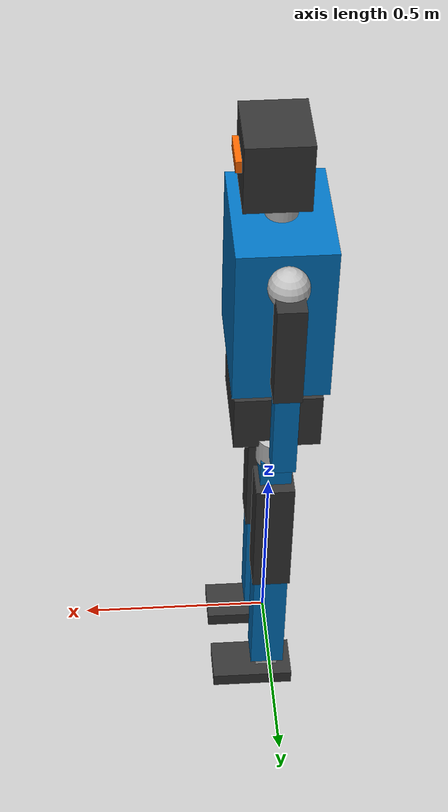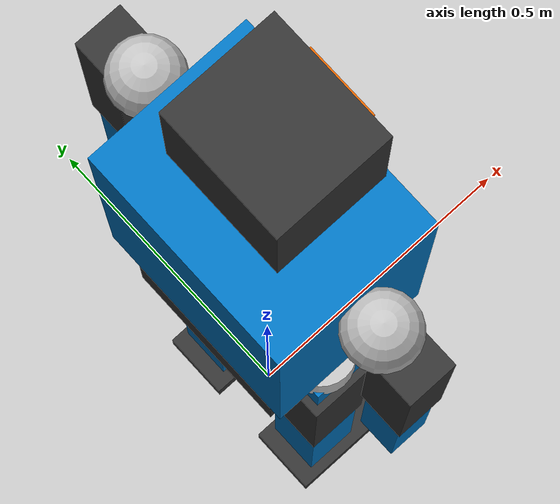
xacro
<?xml version="1.0"?>
<robot name="synapse_humanoid" xmlns:xacro="http://www.ros.org/wiki/xacro">

  <!-- Include ros2_control definition -->
  <xacro:include filename="$(find humanoid_description)/urdf/humanoid_ros2_control.xacro"/>

  <!-- Material definitions -->
  <material name="dark_grey"><color rgba="0.2 0.2 0.2 1.0"/></material>
  <material name="metallic_blue"><color rgba="0.0 0.45 0.75 1.0"/></material>
  <material name="silver"><color rgba="0.75 0.75 0.75 1.0"/></material>
  <material name="orange"><color rgba="1.0 0.4 0.0 1.0"/></material>

  <!-- Base footprint & Pelvis -->
  <link name="base_footprint"/>

  <joint name="base_footprint_to_pelvis" type="fixed">
    <parent link="base_footprint"/>
    <child link="pelvis"/>
    <origin xyz="0 0 0.85" rpy="0 0 0"/>
  </joint>

  <link name="pelvis">
    <visual>
      <geometry><box size="0.22 0.26 0.16"/></geometry>
      <material name="dark_grey"/>
    </visual>
    <collision>
      <geometry><box size="0.22 0.26 0.16"/></geometry>
    </collision>
    <inertial>
      <mass value="5.0"/>
      <origin xyz="0 0 0"/>
      <inertia ixx="0.03" ixy="0" ixz="0" iyy="0.03" iyz="0" izz="0.03"/>
    </inertial>
  </link>

  <!-- Torso -->
  <joint name="torso_yaw_joint" type="revolute">
    <parent link="pelvis"/>
    <child link="torso"/>
    <origin xyz="0 0 0.12" rpy="0 0 0"/>
    <axis xyz="0 0 1"/>
    <limit lower="-1.57" upper="1.57" effort="100.0" velocity="3.0"/>
  </joint>

  <link name="torso">
    <visual>
      <origin xyz="0 0 0.22" rpy="0 0 0"/>
      <geometry><box size="0.24 0.32 0.44"/></geometry>
      <material name="metallic_blue"/>
    </visual>
    <collision>
      <origin xyz="0 0 0.22" rpy="0 0 0"/>
      <geometry><box size="0.24 0.32 0.44"/></geometry>
    </collision>
    <inertial>
      <mass value="12.0"/>
      <origin xyz="0 0 0.22"/>
      <inertia ixx="0.20" ixy="0" ixz="0" iyy="0.18" iyz="0" izz="0.15"/>
    </inertial>
  </link>

  <!-- Head & Camera -->
  <joint name="head_yaw_joint" type="revolute">
    <parent link="torso"/>
    <child link="neck_link"/>
    <origin xyz="0 0 0.46" rpy="0 0 0"/>
    <axis xyz="0 0 1"/>
    <limit lower="-1.2" upper="1.2" effort="20.0" velocity="4.0"/>
  </joint>

  <link name="neck_link">
    <visual>
      <geometry><cylinder radius="0.04" length="0.08"/></geometry>
      <material name="silver"/>
    </visual>
    <inertial><mass value="0.5"/><inertia ixx="0.001" ixy="0" ixz="0" iyy="0.001" iyz="0" izz="0.001"/></inertial>
  </link>

  <joint name="head_pitch_joint" type="revolute">
    <parent link="neck_link"/>
    <child link="head"/>
    <origin xyz="0 0 0.06" rpy="0 0 0"/>
    <axis xyz="0 1 0"/>
    <limit lower="-0.8" upper="0.8" effort="20.0" velocity="4.0"/>
  </joint>

  <link name="head">
    <visual>
      <origin xyz="0.02 0 0.08"/>
      <geometry><box size="0.16 0.18 0.18"/></geometry>
      <material name="dark_grey"/>
    </visual>
    <collision>
      <origin xyz="0.02 0 0.08"/>
      <geometry><box size="0.16 0.18 0.18"/></geometry>
    </collision>
    <inertial><mass value="1.8"/><origin xyz="0 0 0.08"/><inertia ixx="0.01" ixy="0" ixz="0" iyy="0.01" iyz="0" izz="0.01"/></inertial>
  </link>

  <!-- RGB-D Head Camera Link -->
  <joint name="head_camera_joint" type="fixed">
    <parent link="head"/>
    <child link="head_camera_link"/>
    <origin xyz="0.10 0 0.09" rpy="0 0 0"/>
  </joint>
  <link name="head_camera_link">
    <visual>
      <geometry><box size="0.03 0.10 0.03"/></geometry>
      <material name="orange"/>
    </visual>
  </link>

  <!-- 6-DOF Leg Macro -->
  <xacro:macro name="bipedal_leg" params="prefix reflect">
    <joint name="${prefix}_hip_yaw_joint" type="revolute">
      <parent link="pelvis"/>
      <child link="${prefix}_hip_yaw_link"/>
      <origin xyz="0 ${reflect * 0.11} -0.10" rpy="0 0 0"/>
      <axis xyz="0 0 1"/>
      <limit lower="-0.8" upper="0.8" effort="120" velocity="4.0"/>
    </joint>

    <link name="${prefix}_hip_yaw_link">
      <visual><geometry><cylinder radius="0.05" length="0.08"/></geometry><material name="silver"/></visual>
      <inertial><mass value="1.5"/><inertia ixx="0.005" ixy="0" ixz="0" iyy="0.005" iyz="0" izz="0.005"/></inertial>
    </link>

    <joint name="${prefix}_hip_roll_joint" type="revolute">
      <parent link="${prefix}_hip_yaw_link"/>
      <child link="${prefix}_hip_roll_link"/>
      <origin xyz="0 0 -0.06" rpy="0 0 0"/>
      <axis xyz="1 0 0"/>
      <limit lower="-0.5" upper="0.5" effort="150" velocity="4.0"/>
    </joint>

    <link name="${prefix}_hip_roll_link">
      <visual><geometry><box size="0.08 0.08 0.08"/></geometry><material name="metallic_blue"/></visual>
      <inertial><mass value="1.8"/><inertia ixx="0.006" ixy="0" ixz="0" iyy="0.006" iyz="0" izz="0.006"/></inertial>
    </link>

    <joint name="${prefix}_hip_pitch_joint" type="revolute">
      <parent link="${prefix}_hip_roll_link"/>
      <child link="${prefix}_thigh"/>
      <origin xyz="0 0 -0.06" rpy="0 0 0"/>
      <axis xyz="0 1 0"/>
      <limit lower="-1.6" upper="0.8" effort="200" velocity="4.0"/>
    </joint>

    <link name="${prefix}_thigh">
      <visual>
        <origin xyz="0 0 -0.18"/>
        <geometry><box size="0.10 0.10 0.36"/></geometry>
        <material name="dark_grey"/>
      </visual>
      <collision>
        <origin xyz="0 0 -0.18"/>
        <geometry><box size="0.10 0.10 0.36"/></geometry>
      </collision>
      <inertial><mass value="4.0"/><origin xyz="0 0 -0.18"/><inertia ixx="0.04" ixy="0" ixz="0" iyy="0.04" iyz="0" izz="0.01"/></inertial>
    </link>

    <joint name="${prefix}_knee_pitch_joint" type="revolute">
      <parent link="${prefix}_thigh"/>
      <child link="${prefix}_shin"/>
      <origin xyz="0 0 -0.36" rpy="0 0 0"/>
      <axis xyz="0 1 0"/>
      <limit lower="0.0" upper="2.2" effort="220" velocity="4.0"/>
    </joint>

    <link name="${prefix}_shin">
      <visual>
        <origin xyz="0 0 -0.17"/>
        <geometry><box size="0.09 0.09 0.34"/></geometry>
        <material name="metallic_blue"/>
      </visual>
      <collision>
        <origin xyz="0 0 -0.17"/>
        <geometry><box size="0.09 0.09 0.34"/></geometry>
      </collision>
      <inertial><mass value="3.5"/><origin xyz="0 0 -0.17"/><inertia ixx="0.03" ixy="0" ixz="0" iyy="0.03" iyz="0" izz="0.01"/></inertial>
    </link>

    <joint name="${prefix}_ankle_pitch_joint" type="revolute">
      <parent link="${prefix}_shin"/>
      <child link="${prefix}_ankle_link"/>
      <origin xyz="0 0 -0.34" rpy="0 0 0"/>
      <axis xyz="0 1 0"/>
      <limit lower="-0.8" upper="0.8" effort="120" velocity="4.0"/>
    </joint>

    <link name="${prefix}_ankle_link">
      <visual><geometry><box size="0.06 0.06 0.06"/></geometry><material name="silver"/></visual>
      <inertial><mass value="0.8"/><inertia ixx="0.002" ixy="0" ixz="0" iyy="0.002" iyz="0" izz="0.002"/></inertial>
    </link>

    <joint name="${prefix}_ankle_roll_joint" type="revolute">
      <parent link="${prefix}_ankle_link"/>
      <child link="${prefix}_foot"/>
      <origin xyz="0 0 -0.04" rpy="0 0 0"/>
      <axis xyz="1 0 0"/>
      <limit lower="-0.4" upper="0.4" effort="120" velocity="4.0"/>
    </joint>

    <link name="${prefix}_foot">
      <visual>
        <origin xyz="0.04 0 -0.02"/>
        <geometry><box size="0.22 0.12 0.04"/></geometry>
        <material name="dark_grey"/>
      </visual>
      <collision>
        <origin xyz="0.04 0 -0.02"/>
        <geometry><box size="0.22 0.12 0.04"/></geometry>
      </collision>
      <inertial><mass value="1.2"/><origin xyz="0.04 0 -0.02"/><inertia ixx="0.004" ixy="0" ixz="0" iyy="0.008" iyz="0" izz="0.009"/></inertial>
    </link>
  </xacro:macro>

  <xacro:bipedal_leg prefix="left" reflect="1"/>
  <xacro:bipedal_leg prefix="right" reflect="-1"/>

  <!-- 3-DOF Arm Macro -->
  <xacro:macro name="upper_arm" params="prefix reflect">
    <joint name="${prefix}_shoulder_pitch_joint" type="revolute">
      <parent link="torso"/>
      <child link="${prefix}_shoulder_link"/>
      <origin xyz="0 ${reflect * 0.20} 0.38" rpy="0 0 0"/>
      <axis xyz="0 1 0"/>
      <limit lower="-2.0" upper="2.0" effort="60" velocity="4.0"/>
    </joint>

    <link name="${prefix}_shoulder_link">
      <visual><geometry><sphere radius="0.05"/></geometry><material name="silver"/></visual>
      <inertial><mass value="1.0"/><inertia ixx="0.002" ixy="0" ixz="0" iyy="0.002" iyz="0" izz="0.002"/></inertial>
    </link>

    <joint name="${prefix}_shoulder_roll_joint" type="revolute">
      <parent link="${prefix}_shoulder_link"/>
      <child link="${prefix}_upper_arm"/>
      <origin xyz="0 ${reflect * 0.05} 0" rpy="0 0 0"/>
      <axis xyz="1 0 0"/>
      <limit lower="-1.8" upper="1.8" effort="60" velocity="4.0"/>
    </joint>

    <link name="${prefix}_upper_arm">
      <visual>
        <origin xyz="0 0 -0.14"/>
        <geometry><box size="0.07 0.07 0.28"/></geometry>
        <material name="dark_grey"/>
      </visual>
      <inertial><mass value="2.0"/><origin xyz="0 0 -0.14"/><inertia ixx="0.01" ixy="0" ixz="0" iyy="0.01" iyz="0" izz="0.005"/></inertial>
    </link>

    <joint name="${prefix}_elbow_pitch_joint" type="revolute">
      <parent link="${prefix}_upper_arm"/>
      <child link="${prefix}_forearm"/>
      <origin xyz="0 0 -0.28" rpy="0 0 0"/>
      <axis xyz="0 1 0"/>
      <limit lower="-2.2" upper="0.0" effort="40" velocity="4.0"/>
    </joint>

    <link name="${prefix}_forearm">
      <visual>
        <origin xyz="0 0 -0.12"/>
        <geometry><box size="0.06 0.06 0.24"/></geometry>
        <material name="metallic_blue"/>
      </visual>
      <inertial><mass value="1.5"/><origin xyz="0 0 -0.12"/><inertia ixx="0.008" ixy="0" ixz="0" iyy="0.008" iyz="0" izz="0.004"/></inertial>
    </link>
  </xacro:macro>

  <xacro:upper_arm prefix="left" reflect="1"/>
  <xacro:upper_arm prefix="right" reflect="-1"/>

  <!-- Attach ros2_control hardware system -->
  <xacro:humanoid_ros2_control name="SynapseHumanoidHardware"/>

</robot>
